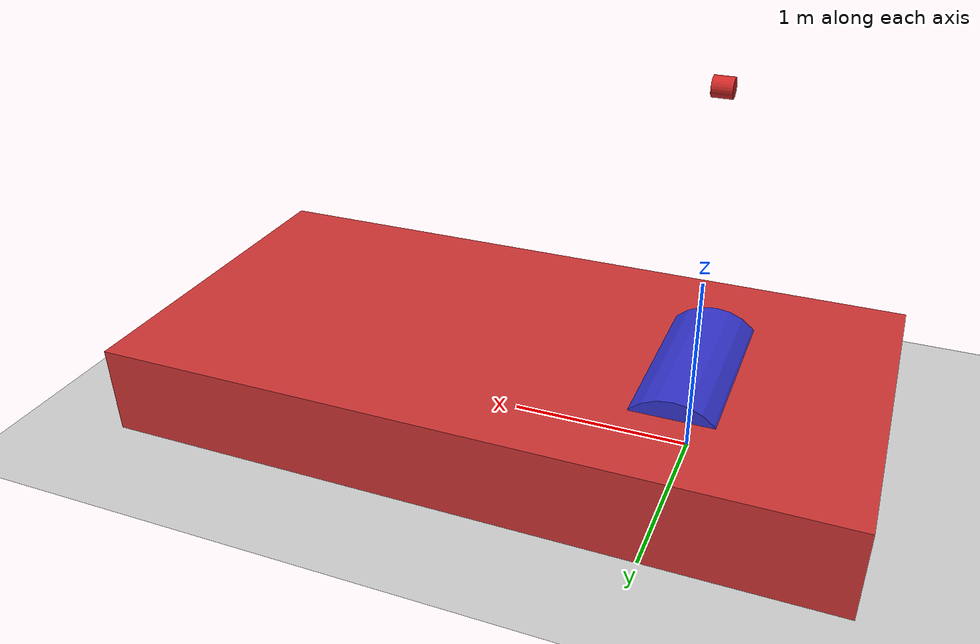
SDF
<?xml version="1.0" ?>
<sdf version="1.5">
  <world name="default">
    <include>
      <uri>model://sun</uri>
    </include>
    <include>
      <uri>model://ground_plane</uri>
    </include>

    <model name="big_block">
      <static>true</static>
      <pose>1 0 0.25 0 0 0</pose>

      <link name="link">
        <visual name="visual">
          <geometry>
            <box>
              <size>4 2 0.5</size>
            </box>
          </geometry>
          <material>
            <ambient>0.8 0.2 0.2 1</ambient>
            <diffuse>0.8 0.2 0.2 1</diffuse>
          </material>
        </visual>
      </link>
    </model>

    <model name="cylinder_on_table">
      <static>true</static>
      <pose>0 0.0 0.3 1.5708 0 0</pose>
      <link name="link">
        <visual name="visual">
          <geometry>
            <cylinder>
              <radius>0.3</radius>
              <length>1.0</length>
            </cylinder>
          </geometry>
          <material>
            <ambient>0.2 0.2 0.8 1</ambient>
            <diffuse>0.2 0.2 0.8 1</diffuse>
          </material>
        </visual>
      </link>
    </model>

    <model name="floating_3d_lidar">
    <static>true</static>
    <pose>0 0.0 2.0 0 1.57 0</pose>
    <link name="3d_lidar">
      <visual name="visual">
        <geometry>
          <cylinder>
            <radius>0.05</radius>
            <length>0.1</length>
          </cylinder>
        </geometry>
        <material>
          <script>
            <name>Gazebo/Red</name>
            <uri>file://media/materials/scripts/gazebo.material</uri>
          </script>
        </material>
      </visual>

      <sensor name="lidar_3d" type="gpu_ray">
        <always_on>true</always_on>
        <visualize>false</visualize> <update_rate>10</update_rate>
        <ray>
          <scan>
            <horizontal>
              <samples>360</samples>
              <resolution>1</resolution>
              <min_angle>-0.4</min_angle>
              <max_angle>0.4</max_angle>
            </horizontal>
            <vertical>
              <samples>64</samples>
              <resolution>1</resolution>
              <min_angle>-0.261799</min_angle>
              <max_angle>0.261799</max_angle>
            </vertical>
          </scan>
          <range>
            <min>0.1</min>
            <max>5.0</max>
            <resolution>0.001</resolution>
          </range>
          <noise>
            <type>gaussian</type>
            <mean>0.0</mean>
            <stddev>0.00</stddev>
          </noise>
        </ray>

        <plugin name="scan" filename="libgazebo_ros_ray_sensor.so">
          <ros>
            <remapping>~/out:=/points</remapping>
          </ros>
          <output_type>sensor_msgs/PointCloud2</output_type>
          <frame_name>link</frame_name>
        </plugin>
      </sensor>
    </link>
  </model>

  </world>
</sdf>
